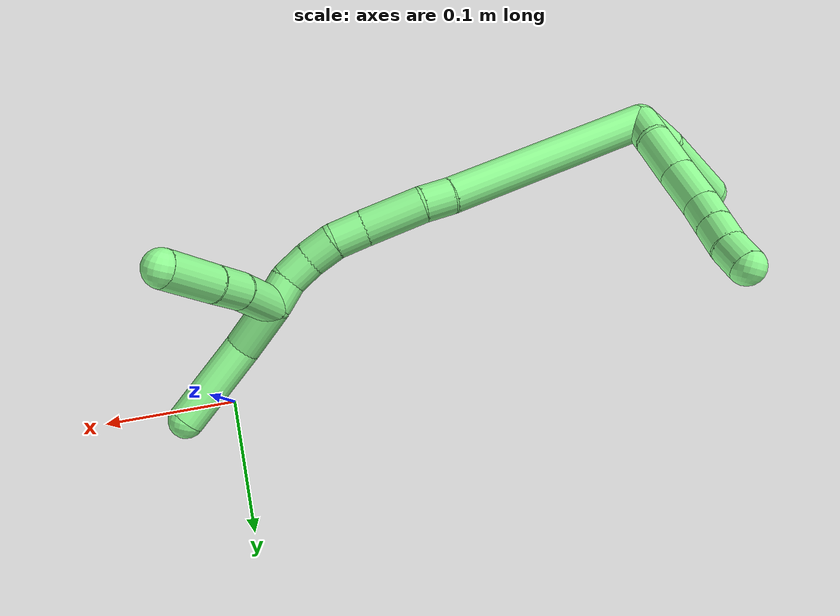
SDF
<sdf version="1.7">
 <world name="default">
  <model name="13">
   <static>0</static>
   <link name="13">
    <collision name="collision-cylinder-e_1_2_8">
     <pose>-0.002538 0.010507 -0.005899 -2.08235 -0.207585 0.35219</pose>
     <geometry><cylinder><radius>0.0125</radius><length>0.024629</length></cylinder></geometry>
     <surface>
      <friction><ode><mu>1.16</mu><mu2>1.16</mu2><slip1>0</slip1><slip2>0</slip2></ode></friction>
      <contact><ode><kp>1e+06</kp><kd>1</kd><max_vel>0</max_vel><min_depth>0.001</min_depth></ode></contact>
     </surface>
    </collision>
    <visual name="visual-cylinder-e_1_2_8">
     <pose>-0.002538 0.010507 -0.005899 -2.08235 -0.207585 0.35219</pose>
     <geometry><cylinder><radius>0.0125</radius><length>0.024629</length></cylinder></geometry>
     <material><ambient>0.564706 0.984314 0.572549 1</ambient></material>
    </visual>
    <collision name="collision-cylinder-e_2_8_9">
     <pose>-0.011611 0.033268 -0.021253 -2.22802 -0.39955 0.781607</pose>
     <geometry><cylinder><radius>0.0125</radius><length>0.033602</length></cylinder></geometry>
     <surface>
      <friction><ode><mu>1.16</mu><mu2>1.16</mu2><slip1>0</slip1><slip2>0</slip2></ode></friction>
      <contact><ode><kp>1e+06</kp><kd>1</kd><max_vel>0</max_vel><min_depth>0.001</min_depth></ode></contact>
     </surface>
    </collision>
    <visual name="visual-cylinder-e_2_8_9">
     <pose>-0.011611 0.033268 -0.021253 -2.22802 -0.39955 0.781607</pose>
     <geometry><cylinder><radius>0.0125</radius><length>0.033602</length></cylinder></geometry>
     <material><ambient>0.564706 0.984314 0.572549 1</ambient></material>
    </visual>
    <collision name="collision-cylinder-e_3_9_10">
     <pose>-0.02414 0.057239 -0.039283 -2.20251 -0.391471 0.745054</pose>
     <geometry><cylinder><radius>0.0125</radius><length>0.031415</length></cylinder></geometry>
     <surface>
      <friction><ode><mu>1.16</mu><mu2>1.16</mu2><slip1>0</slip1><slip2>0</slip2></ode></friction>
      <contact><ode><kp>1e+06</kp><kd>1</kd><max_vel>0</max_vel><min_depth>0.001</min_depth></ode></contact>
     </surface>
    </collision>
    <visual name="visual-cylinder-e_3_9_10">
     <pose>-0.02414 0.057239 -0.039283 -2.20251 -0.391471 0.745054</pose>
     <geometry><cylinder><radius>0.0125</radius><length>0.031415</length></cylinder></geometry>
     <material><ambient>0.564706 0.984314 0.572549 1</ambient></material>
    </visual>
    <collision name="collision-cylinder-e_4_10_11">
     <pose>-0.032617 0.077023 -0.053246 -2.15981 -0.250634 0.462906</pose>
     <geometry><cylinder><radius>0.0125</radius><length>0.02003</length></cylinder></geometry>
     <surface>
      <friction><ode><mu>1.16</mu><mu2>1.16</mu2><slip1>0</slip1><slip2>0</slip2></ode></friction>
      <contact><ode><kp>1e+06</kp><kd>1</kd><max_vel>0</max_vel><min_depth>0.001</min_depth></ode></contact>
     </surface>
    </collision>
    <visual name="visual-cylinder-e_4_10_11">
     <pose>-0.032617 0.077023 -0.053246 -2.15981 -0.250634 0.462906</pose>
     <geometry><cylinder><radius>0.0125</radius><length>0.02003</length></cylinder></geometry>
     <material><ambient>0.564706 0.984314 0.572549 1</ambient></material>
    </visual>
    <collision name="collision-cylinder-e_5_11_12">
     <pose>-0.037701 0.093206 -0.064075 -2.16124 -0.260077 0.480679</pose>
     <geometry><cylinder><radius>0.0125</radius><length>0.020219</length></cylinder></geometry>
     <surface>
      <friction><ode><mu>1.16</mu><mu2>1.16</mu2><slip1>0</slip1><slip2>0</slip2></ode></friction>
      <contact><ode><kp>1e+06</kp><kd>1</kd><max_vel>0</max_vel><min_depth>0.001</min_depth></ode></contact>
     </surface>
    </collision>
    <visual name="visual-cylinder-e_5_11_12">
     <pose>-0.037701 0.093206 -0.064075 -2.16124 -0.260077 0.480679</pose>
     <geometry><cylinder><radius>0.0125</radius><length>0.020219</length></cylinder></geometry>
     <material><ambient>0.564706 0.984314 0.572549 1</ambient></material>
    </visual>
    <collision name="collision-cylinder-e_6_12_6">
     <pose>-0.043853 0.109594 -0.073988 -2.06649 -0.361161 0.5944</pose>
     <geometry><cylinder><radius>0.0125</radius><length>0.020106</length></cylinder></geometry>
     <surface>
      <friction><ode><mu>1.16</mu><mu2>1.16</mu2><slip1>0</slip1><slip2>0</slip2></ode></friction>
      <contact><ode><kp>1e+06</kp><kd>1</kd><max_vel>0</max_vel><min_depth>0.001</min_depth></ode></contact>
     </surface>
    </collision>
    <visual name="visual-cylinder-e_6_12_6">
     <pose>-0.043853 0.109594 -0.073988 -2.06649 -0.361161 0.5944</pose>
     <geometry><cylinder><radius>0.0125</radius><length>0.020106</length></cylinder></geometry>
     <material><ambient>0.564706 0.984314 0.572549 1</ambient></material>
    </visual>
    <collision name="collision-cylinder-e_1_2_13">
     <pose>-0.014317 -0.003433 -0.005082 2.54742 -1.16609 -2.27241</pose>
     <geometry><cylinder><radius>0.0125</radius><length>0.03115</length></cylinder></geometry>
     <surface>
      <friction><ode><mu>1.16</mu><mu2>1.16</mu2><slip1>0</slip1><slip2>0</slip2></ode></friction>
      <contact><ode><kp>1e+06</kp><kd>1</kd><max_vel>0</max_vel><min_depth>0.001</min_depth></ode></contact>
     </surface>
    </collision>
    <visual name="visual-cylinder-e_1_2_13">
     <pose>-0.014317 -0.003433 -0.005082 2.54742 -1.16609 -2.27241</pose>
     <geometry><cylinder><radius>0.0125</radius><length>0.03115</length></cylinder></geometry>
     <material><ambient>0.564706 0.984314 0.572549 1</ambient></material>
    </visual>
    <collision name="collision-cylinder-e_2_13_5">
     <pose>-0.057936 -0.02134 -0.020978 2.21252 -1.01826 -1.67851</pose>
     <geometry><cylinder><radius>0.0125</radius><length>0.06885</length></cylinder></geometry>
     <surface>
      <friction><ode><mu>1.16</mu><mu2>1.16</mu2><slip1>0</slip1><slip2>0</slip2></ode></friction>
      <contact><ode><kp>1e+06</kp><kd>1</kd><max_vel>0</max_vel><min_depth>0.001</min_depth></ode></contact>
     </surface>
    </collision>
    <visual name="visual-cylinder-e_2_13_5">
     <pose>-0.057936 -0.02134 -0.020978 2.21252 -1.01826 -1.67851</pose>
     <geometry><cylinder><radius>0.0125</radius><length>0.06885</length></cylinder></geometry>
     <material><ambient>0.564706 0.984314 0.572549 1</ambient></material>
    </visual>
    <collision name="collision-cylinder-e_1_2_14">
     <pose>0.06339 0.014558 -0.042599 -2.81229 0.95328 -2.51895</pose>
     <geometry><cylinder><radius>0.0125</radius><length>0.155497</length></cylinder></geometry>
     <surface>
      <friction><ode><mu>1.16</mu><mu2>1.16</mu2><slip1>0</slip1><slip2>0</slip2></ode></friction>
      <contact><ode><kp>1e+06</kp><kd>1</kd><max_vel>0</max_vel><min_depth>0.001</min_depth></ode></contact>
     </surface>
    </collision>
    <visual name="visual-cylinder-e_1_2_14">
     <pose>0.06339 0.014558 -0.042599 -2.81229 0.95328 -2.51895</pose>
     <geometry><cylinder><radius>0.0125</radius><length>0.155497</length></cylinder></geometry>
     <material><ambient>0.564706 0.984314 0.572549 1</ambient></material>
    </visual>
    <collision name="collision-cylinder-e_2_14_15">
     <pose>0.135662 0.030018 -0.090426 -2.97061 1.03227 -2.84181</pose>
     <geometry><cylinder><radius>0.0125</radius><length>0.020694</length></cylinder></geometry>
     <surface>
      <friction><ode><mu>1.16</mu><mu2>1.16</mu2><slip1>0</slip1><slip2>0</slip2></ode></friction>
      <contact><ode><kp>1e+06</kp><kd>1</kd><max_vel>0</max_vel><min_depth>0.001</min_depth></ode></contact>
     </surface>
    </collision>
    <visual name="visual-cylinder-e_2_14_15">
     <pose>0.135662 0.030018 -0.090426 -2.97061 1.03227 -2.84181</pose>
     <geometry><cylinder><radius>0.0125</radius><length>0.020694</length></cylinder></geometry>
     <material><ambient>0.564706 0.984314 0.572549 1</ambient></material>
    </visual>
    <collision name="collision-cylinder-e_3_15_16">
     <pose>0.16122 0.029719 -0.108227 3.04625 0.922639 2.95024</pose>
     <geometry><cylinder><radius>0.0125</radius><length>0.041836</length></cylinder></geometry>
     <surface>
      <friction><ode><mu>1.16</mu><mu2>1.16</mu2><slip1>0</slip1><slip2>0</slip2></ode></friction>
      <contact><ode><kp>1e+06</kp><kd>1</kd><max_vel>0</max_vel><min_depth>0.001</min_depth></ode></contact>
     </surface>
    </collision>
    <visual name="visual-cylinder-e_3_15_16">
     <pose>0.16122 0.029719 -0.108227 3.04625 0.922639 2.95024</pose>
     <geometry><cylinder><radius>0.0125</radius><length>0.041836</length></cylinder></geometry>
     <material><ambient>0.564706 0.984314 0.572549 1</ambient></material>
    </visual>
    <collision name="collision-cylinder-e_4_16_17">
     <pose>0.186503 0.028388 -0.127439 3.12212 0.913504 3.10196</pose>
     <geometry><cylinder><radius>0.0125</radius><length>0.021743</length></cylinder></geometry>
     <surface>
      <friction><ode><mu>1.16</mu><mu2>1.16</mu2><slip1>0</slip1><slip2>0</slip2></ode></friction>
      <contact><ode><kp>1e+06</kp><kd>1</kd><max_vel>0</max_vel><min_depth>0.001</min_depth></ode></contact>
     </surface>
    </collision>
    <visual name="visual-cylinder-e_4_16_17">
     <pose>0.186503 0.028388 -0.127439 3.12212 0.913504 3.10196</pose>
     <geometry><cylinder><radius>0.0125</radius><length>0.021743</length></cylinder></geometry>
     <material><ambient>0.564706 0.984314 0.572549 1</ambient></material>
    </visual>
    <collision name="collision-cylinder-e_5_17_18">
     <pose>0.201241 0.026886 -0.141894 2.96775 0.65798 2.64178</pose>
     <geometry><cylinder><radius>0.0125</radius><length>0.020055</length></cylinder></geometry>
     <surface>
      <friction><ode><mu>1.16</mu><mu2>1.16</mu2><slip1>0</slip1><slip2>0</slip2></ode></friction>
      <contact><ode><kp>1e+06</kp><kd>1</kd><max_vel>0</max_vel><min_depth>0.001</min_depth></ode></contact>
     </surface>
    </collision>
    <visual name="visual-cylinder-e_5_17_18">
     <pose>0.201241 0.026886 -0.141894 2.96775 0.65798 2.64178</pose>
     <geometry><cylinder><radius>0.0125</radius><length>0.020055</length></cylinder></geometry>
     <material><ambient>0.564706 0.984314 0.572549 1</ambient></material>
    </visual>
    <collision name="collision-cylinder-e_6_18_19">
     <pose>0.212713 0.025318 -0.158201 3.11859 0.561266 3.06183</pose>
     <geometry><cylinder><radius>0.0125</radius><length>0.020066</length></cylinder></geometry>
     <surface>
      <friction><ode><mu>1.16</mu><mu2>1.16</mu2><slip1>0</slip1><slip2>0</slip2></ode></friction>
      <contact><ode><kp>1e+06</kp><kd>1</kd><max_vel>0</max_vel><min_depth>0.001</min_depth></ode></contact>
     </surface>
    </collision>
    <visual name="visual-cylinder-e_6_18_19">
     <pose>0.212713 0.025318 -0.158201 3.11859 0.561266 3.06183</pose>
     <geometry><cylinder><radius>0.0125</radius><length>0.020066</length></cylinder></geometry>
     <material><ambient>0.564706 0.984314 0.572549 1</ambient></material>
    </visual>
    <collision name="collision-cylinder-e_7_19_1">
     <pose>0.221048 0.026716 -0.176157 -2.97482 0.302397 -2.13813</pose>
     <geometry><cylinder><radius>0.0125</radius><length>0.020109</length></cylinder></geometry>
     <surface>
      <friction><ode><mu>1.16</mu><mu2>1.16</mu2><slip1>0</slip1><slip2>0</slip2></ode></friction>
      <contact><ode><kp>1e+06</kp><kd>1</kd><max_vel>0</max_vel><min_depth>0.001</min_depth></ode></contact>
     </surface>
    </collision>
    <visual name="visual-cylinder-e_7_19_1">
     <pose>0.221048 0.026716 -0.176157 -2.97482 0.302397 -2.13813</pose>
     <geometry><cylinder><radius>0.0125</radius><length>0.020109</length></cylinder></geometry>
     <material><ambient>0.564706 0.984314 0.572549 1</ambient></material>
    </visual>
    <collision name="collision-cylinder-e_1_1_20">
     <pose>0.236343 0.040668 -0.181446 -1.24496 0.756012 -0.55525</pose>
     <geometry><cylinder><radius>0.0125</radius><length>0.03586</length></cylinder></geometry>
     <surface>
      <friction><ode><mu>1.16</mu><mu2>1.16</mu2><slip1>0</slip1><slip2>0</slip2></ode></friction>
      <contact><ode><kp>1e+06</kp><kd>1</kd><max_vel>0</max_vel><min_depth>0.001</min_depth></ode></contact>
     </surface>
    </collision>
    <visual name="visual-cylinder-e_1_1_20">
     <pose>0.236343 0.040668 -0.181446 -1.24496 0.756012 -0.55525</pose>
     <geometry><cylinder><radius>0.0125</radius><length>0.03586</length></cylinder></geometry>
     <material><ambient>0.564706 0.984314 0.572549 1</ambient></material>
    </visual>
    <collision name="collision-cylinder-e_2_20_21">
     <pose>0.257507 0.061049 -0.175682 -1.37533 0.825703 -0.690762</pose>
     <geometry><cylinder><radius>0.0125</radius><length>0.02412</length></cylinder></geometry>
     <surface>
      <friction><ode><mu>1.16</mu><mu2>1.16</mu2><slip1>0</slip1><slip2>0</slip2></ode></friction>
      <contact><ode><kp>1e+06</kp><kd>1</kd><max_vel>0</max_vel><min_depth>0.001</min_depth></ode></contact>
     </surface>
    </collision>
    <visual name="visual-cylinder-e_2_20_21">
     <pose>0.257507 0.061049 -0.175682 -1.37533 0.825703 -0.690762</pose>
     <geometry><cylinder><radius>0.0125</radius><length>0.02412</length></cylinder></geometry>
     <material><ambient>0.564706 0.984314 0.572549 1</ambient></material>
    </visual>
    <collision name="collision-cylinder-e_3_21_4">
     <pose>0.282175 0.081035 -0.171354 -1.34568 0.910414 -0.743837</pose>
     <geometry><cylinder><radius>0.0125</radius><length>0.04002</length></cylinder></geometry>
     <surface>
      <friction><ode><mu>1.16</mu><mu2>1.16</mu2><slip1>0</slip1><slip2>0</slip2></ode></friction>
      <contact><ode><kp>1e+06</kp><kd>1</kd><max_vel>0</max_vel><min_depth>0.001</min_depth></ode></contact>
     </surface>
    </collision>
    <visual name="visual-cylinder-e_3_21_4">
     <pose>0.282175 0.081035 -0.171354 -1.34568 0.910414 -0.743837</pose>
     <geometry><cylinder><radius>0.0125</radius><length>0.04002</length></cylinder></geometry>
     <material><ambient>0.564706 0.984314 0.572549 1</ambient></material>
    </visual>
    <collision name="collision-cylinder-e_1_1_22">
     <pose>0.229932 0.023102 -0.202654 2.84486 0.319396 1.6455</pose>
     <geometry><cylinder><radius>0.0125</radius><length>0.037518</length></cylinder></geometry>
     <surface>
      <friction><ode><mu>1.16</mu><mu2>1.16</mu2><slip1>0</slip1><slip2>0</slip2></ode></friction>
      <contact><ode><kp>1e+06</kp><kd>1</kd><max_vel>0</max_vel><min_depth>0.001</min_depth></ode></contact>
     </surface>
    </collision>
    <visual name="visual-cylinder-e_1_1_22">
     <pose>0.229932 0.023102 -0.202654 2.84486 0.319396 1.6455</pose>
     <geometry><cylinder><radius>0.0125</radius><length>0.037518</length></cylinder></geometry>
     <material><ambient>0.564706 0.984314 0.572549 1</ambient></material>
    </visual>
    <collision name="collision-cylinder-e_2_22_3">
     <pose>0.24848 0.019632 -0.248195 -3.0807 0.417153 -2.85579</pose>
     <geometry><cylinder><radius>0.0125</radius><length>0.062482</length></cylinder></geometry>
     <surface>
      <friction><ode><mu>1.16</mu><mu2>1.16</mu2><slip1>0</slip1><slip2>0</slip2></ode></friction>
      <contact><ode><kp>1e+06</kp><kd>1</kd><max_vel>0</max_vel><min_depth>0.001</min_depth></ode></contact>
     </surface>
    </collision>
    <visual name="visual-cylinder-e_2_22_3">
     <pose>0.24848 0.019632 -0.248195 -3.0807 0.417153 -2.85579</pose>
     <geometry><cylinder><radius>0.0125</radius><length>0.062482</length></cylinder></geometry>
     <material><ambient>0.564706 0.984314 0.572549 1</ambient></material>
    </visual>
    <collision name="collision-sphere-3">
     <pose>0.261138 0.02137 -0.276704 0 -0 0</pose>
     <geometry><sphere><radius>0.0125</radius></sphere></geometry>
     <surface>
      <friction><ode><mu>1.16</mu><mu2>1.16</mu2><slip1>0</slip1><slip2>0</slip2></ode></friction>
      <contact><ode><kp>1e+06</kp><kd>1</kd><max_vel>0</max_vel><min_depth>0.001</min_depth></ode></contact>
     </surface>
    </collision>
    <visual name="visual-sphere-3">
     <pose>0.261138 0.02137 -0.276704 0 -0 0</pose>
     <geometry><sphere><radius>0.0125</radius></sphere></geometry>
     <material><ambient>0.564706 0.984314 0.572549 1</ambient></material>
    </visual>
    <collision name="collision-sphere-22">
     <pose>0.235823 0.017894 -0.219686 0 -0 0</pose>
     <geometry><sphere><radius>0.0125</radius></sphere></geometry>
     <surface>
      <friction><ode><mu>1.16</mu><mu2>1.16</mu2><slip1>0</slip1><slip2>0</slip2></ode></friction>
      <contact><ode><kp>1e+06</kp><kd>1</kd><max_vel>0</max_vel><min_depth>0.001</min_depth></ode></contact>
     </surface>
    </collision>
    <visual name="visual-sphere-22">
     <pose>0.235823 0.017894 -0.219686 0 -0 0</pose>
     <geometry><sphere><radius>0.0125</radius></sphere></geometry>
     <material><ambient>0.564706 0.984314 0.572549 1</ambient></material>
    </visual>
    <collision name="collision-sphere-4">
     <pose>0.297978 0.093 -0.168614 0 -0 0</pose>
     <geometry><sphere><radius>0.0125</radius></sphere></geometry>
     <surface>
      <friction><ode><mu>1.16</mu><mu2>1.16</mu2><slip1>0</slip1><slip2>0</slip2></ode></friction>
      <contact><ode><kp>1e+06</kp><kd>1</kd><max_vel>0</max_vel><min_depth>0.001</min_depth></ode></contact>
     </surface>
    </collision>
    <visual name="visual-sphere-4">
     <pose>0.297978 0.093 -0.168614 0 -0 0</pose>
     <geometry><sphere><radius>0.0125</radius></sphere></geometry>
     <material><ambient>0.564706 0.984314 0.572549 1</ambient></material>
    </visual>
    <collision name="collision-sphere-21">
     <pose>0.266372 0.06907 -0.174094 0 -0 0</pose>
     <geometry><sphere><radius>0.0125</radius></sphere></geometry>
     <surface>
      <friction><ode><mu>1.16</mu><mu2>1.16</mu2><slip1>0</slip1><slip2>0</slip2></ode></friction>
      <contact><ode><kp>1e+06</kp><kd>1</kd><max_vel>0</max_vel><min_depth>0.001</min_depth></ode></contact>
     </surface>
    </collision>
    <visual name="visual-sphere-21">
     <pose>0.266372 0.06907 -0.174094 0 -0 0</pose>
     <geometry><sphere><radius>0.0125</radius></sphere></geometry>
     <material><ambient>0.564706 0.984314 0.572549 1</ambient></material>
    </visual>
    <collision name="collision-sphere-20">
     <pose>0.248643 0.053027 -0.17727 0 -0 0</pose>
     <geometry><sphere><radius>0.0125</radius></sphere></geometry>
     <surface>
      <friction><ode><mu>1.16</mu><mu2>1.16</mu2><slip1>0</slip1><slip2>0</slip2></ode></friction>
      <contact><ode><kp>1e+06</kp><kd>1</kd><max_vel>0</max_vel><min_depth>0.001</min_depth></ode></contact>
     </surface>
    </collision>
    <visual name="visual-sphere-20">
     <pose>0.248643 0.053027 -0.17727 0 -0 0</pose>
     <geometry><sphere><radius>0.0125</radius></sphere></geometry>
     <material><ambient>0.564706 0.984314 0.572549 1</ambient></material>
    </visual>
    <collision name="collision-sphere-12">
     <pose>-0.040301 0.101321 -0.069515 0 -0 0</pose>
     <geometry><sphere><radius>0.0125</radius></sphere></geometry>
     <surface>
      <friction><ode><mu>1.16</mu><mu2>1.16</mu2><slip1>0</slip1><slip2>0</slip2></ode></friction>
      <contact><ode><kp>1e+06</kp><kd>1</kd><max_vel>0</max_vel><min_depth>0.001</min_depth></ode></contact>
     </surface>
    </collision>
    <visual name="visual-sphere-12">
     <pose>-0.040301 0.101321 -0.069515 0 -0 0</pose>
     <geometry><sphere><radius>0.0125</radius></sphere></geometry>
     <material><ambient>0.564706 0.984314 0.572549 1</ambient></material>
    </visual>
    <collision name="collision-sphere-11">
     <pose>-0.035101 0.08509 -0.058636 0 -0 0</pose>
     <geometry><sphere><radius>0.0125</radius></sphere></geometry>
     <surface>
      <friction><ode><mu>1.16</mu><mu2>1.16</mu2><slip1>0</slip1><slip2>0</slip2></ode></friction>
      <contact><ode><kp>1e+06</kp><kd>1</kd><max_vel>0</max_vel><min_depth>0.001</min_depth></ode></contact>
     </surface>
    </collision>
    <visual name="visual-sphere-11">
     <pose>-0.035101 0.08509 -0.058636 0 -0 0</pose>
     <geometry><sphere><radius>0.0125</radius></sphere></geometry>
     <material><ambient>0.564706 0.984314 0.572549 1</ambient></material>
    </visual>
    <collision name="collision-sphere-10">
     <pose>-0.030133 0.068956 -0.047857 0 -0 0</pose>
     <geometry><sphere><radius>0.0125</radius></sphere></geometry>
     <surface>
      <friction><ode><mu>1.16</mu><mu2>1.16</mu2><slip1>0</slip1><slip2>0</slip2></ode></friction>
      <contact><ode><kp>1e+06</kp><kd>1</kd><max_vel>0</max_vel><min_depth>0.001</min_depth></ode></contact>
     </surface>
    </collision>
    <visual name="visual-sphere-10">
     <pose>-0.030133 0.068956 -0.047857 0 -0 0</pose>
     <geometry><sphere><radius>0.0125</radius></sphere></geometry>
     <material><ambient>0.564706 0.984314 0.572549 1</ambient></material>
    </visual>
    <collision name="collision-sphere-9">
     <pose>-0.018147 0.045522 -0.030709 0 -0 0</pose>
     <geometry><sphere><radius>0.0125</radius></sphere></geometry>
     <surface>
      <friction><ode><mu>1.16</mu><mu2>1.16</mu2><slip1>0</slip1><slip2>0</slip2></ode></friction>
      <contact><ode><kp>1e+06</kp><kd>1</kd><max_vel>0</max_vel><min_depth>0.001</min_depth></ode></contact>
     </surface>
    </collision>
    <visual name="visual-sphere-9">
     <pose>-0.018147 0.045522 -0.030709 0 -0 0</pose>
     <geometry><sphere><radius>0.0125</radius></sphere></geometry>
     <material><ambient>0.564706 0.984314 0.572549 1</ambient></material>
    </visual>
    <collision name="collision-sphere-2">
     <geometry><sphere><radius>0.0125</radius></sphere></geometry>
     <surface>
      <friction><ode><mu>1.16</mu><mu2>1.16</mu2><slip1>0</slip1><slip2>0</slip2></ode></friction>
      <contact><ode><kp>1e+06</kp><kd>1</kd><max_vel>0</max_vel><min_depth>0.001</min_depth></ode></contact>
     </surface>
    </collision>
    <visual name="visual-sphere-2">
     <geometry><sphere><radius>0.0125</radius></sphere></geometry>
     <material><ambient>0.564706 0.984314 0.572549 1</ambient></material>
    </visual>
    <collision name="collision-sphere-19">
     <pose>0.218054 0.025123 -0.166692 0 -0 0</pose>
     <geometry><sphere><radius>0.0125</radius></sphere></geometry>
     <surface>
      <friction><ode><mu>1.16</mu><mu2>1.16</mu2><slip1>0</slip1><slip2>0</slip2></ode></friction>
      <contact><ode><kp>1e+06</kp><kd>1</kd><max_vel>0</max_vel><min_depth>0.001</min_depth></ode></contact>
     </surface>
    </collision>
    <visual name="visual-sphere-19">
     <pose>0.218054 0.025123 -0.166692 0 -0 0</pose>
     <geometry><sphere><radius>0.0125</radius></sphere></geometry>
     <material><ambient>0.564706 0.984314 0.572549 1</ambient></material>
    </visual>
    <collision name="collision-sphere-8">
     <pose>-0.005076 0.021015 -0.011798 0 -0 0</pose>
     <geometry><sphere><radius>0.0125</radius></sphere></geometry>
     <surface>
      <friction><ode><mu>1.16</mu><mu2>1.16</mu2><slip1>0</slip1><slip2>0</slip2></ode></friction>
      <contact><ode><kp>1e+06</kp><kd>1</kd><max_vel>0</max_vel><min_depth>0.001</min_depth></ode></contact>
     </surface>
    </collision>
    <visual name="visual-sphere-8">
     <pose>-0.005076 0.021015 -0.011798 0 -0 0</pose>
     <geometry><sphere><radius>0.0125</radius></sphere></geometry>
     <material><ambient>0.564706 0.984314 0.572549 1</ambient></material>
    </visual>
    <collision name="collision-sphere-6">
     <pose>-0.047405 0.117866 -0.078461 0 -0 0</pose>
     <geometry><sphere><radius>0.0125</radius></sphere></geometry>
     <surface>
      <friction><ode><mu>1.16</mu><mu2>1.16</mu2><slip1>0</slip1><slip2>0</slip2></ode></friction>
      <contact><ode><kp>1e+06</kp><kd>1</kd><max_vel>0</max_vel><min_depth>0.001</min_depth></ode></contact>
     </surface>
    </collision>
    <visual name="visual-sphere-6">
     <pose>-0.047405 0.117866 -0.078461 0 -0 0</pose>
     <geometry><sphere><radius>0.0125</radius></sphere></geometry>
     <material><ambient>0.564706 0.984314 0.572549 1</ambient></material>
    </visual>
    <collision name="collision-sphere-13">
     <pose>-0.028634 -0.006866 -0.010163 0 -0 0</pose>
     <geometry><sphere><radius>0.0125</radius></sphere></geometry>
     <surface>
      <friction><ode><mu>1.16</mu><mu2>1.16</mu2><slip1>0</slip1><slip2>0</slip2></ode></friction>
      <contact><ode><kp>1e+06</kp><kd>1</kd><max_vel>0</max_vel><min_depth>0.001</min_depth></ode></contact>
     </surface>
    </collision>
    <visual name="visual-sphere-13">
     <pose>-0.028634 -0.006866 -0.010163 0 -0 0</pose>
     <geometry><sphere><radius>0.0125</radius></sphere></geometry>
     <material><ambient>0.564706 0.984314 0.572549 1</ambient></material>
    </visual>
    <collision name="collision-sphere-5">
     <pose>-0.087239 -0.035813 -0.031793 0 -0 0</pose>
     <geometry><sphere><radius>0.0125</radius></sphere></geometry>
     <surface>
      <friction><ode><mu>1.16</mu><mu2>1.16</mu2><slip1>0</slip1><slip2>0</slip2></ode></friction>
      <contact><ode><kp>1e+06</kp><kd>1</kd><max_vel>0</max_vel><min_depth>0.001</min_depth></ode></contact>
     </surface>
    </collision>
    <visual name="visual-sphere-5">
     <pose>-0.087239 -0.035813 -0.031793 0 -0 0</pose>
     <geometry><sphere><radius>0.0125</radius></sphere></geometry>
     <material><ambient>0.564706 0.984314 0.572549 1</ambient></material>
    </visual>
    <collision name="collision-sphere-14">
     <pose>0.12678 0.029115 -0.085197 0 -0 0</pose>
     <geometry><sphere><radius>0.0125</radius></sphere></geometry>
     <surface>
      <friction><ode><mu>1.16</mu><mu2>1.16</mu2><slip1>0</slip1><slip2>0</slip2></ode></friction>
      <contact><ode><kp>1e+06</kp><kd>1</kd><max_vel>0</max_vel><min_depth>0.001</min_depth></ode></contact>
     </surface>
    </collision>
    <visual name="visual-sphere-14">
     <pose>0.12678 0.029115 -0.085197 0 -0 0</pose>
     <geometry><sphere><radius>0.0125</radius></sphere></geometry>
     <material><ambient>0.564706 0.984314 0.572549 1</ambient></material>
    </visual>
    <collision name="collision-sphere-15">
     <pose>0.144545 0.030921 -0.095655 0 -0 0</pose>
     <geometry><sphere><radius>0.0125</radius></sphere></geometry>
     <surface>
      <friction><ode><mu>1.16</mu><mu2>1.16</mu2><slip1>0</slip1><slip2>0</slip2></ode></friction>
      <contact><ode><kp>1e+06</kp><kd>1</kd><max_vel>0</max_vel><min_depth>0.001</min_depth></ode></contact>
     </surface>
    </collision>
    <visual name="visual-sphere-15">
     <pose>0.144545 0.030921 -0.095655 0 -0 0</pose>
     <geometry><sphere><radius>0.0125</radius></sphere></geometry>
     <material><ambient>0.564706 0.984314 0.572549 1</ambient></material>
    </visual>
    <collision name="collision-sphere-16">
     <pose>0.177896 0.028517 -0.120798 0 -0 0</pose>
     <geometry><sphere><radius>0.0125</radius></sphere></geometry>
     <surface>
      <friction><ode><mu>1.16</mu><mu2>1.16</mu2><slip1>0</slip1><slip2>0</slip2></ode></friction>
      <contact><ode><kp>1e+06</kp><kd>1</kd><max_vel>0</max_vel><min_depth>0.001</min_depth></ode></contact>
     </surface>
    </collision>
    <visual name="visual-sphere-16">
     <pose>0.177896 0.028517 -0.120798 0 -0 0</pose>
     <geometry><sphere><radius>0.0125</radius></sphere></geometry>
     <material><ambient>0.564706 0.984314 0.572549 1</ambient></material>
    </visual>
    <collision name="collision-sphere-17">
     <pose>0.195109 0.028258 -0.13408 0 -0 0</pose>
     <geometry><sphere><radius>0.0125</radius></sphere></geometry>
     <surface>
      <friction><ode><mu>1.16</mu><mu2>1.16</mu2><slip1>0</slip1><slip2>0</slip2></ode></friction>
      <contact><ode><kp>1e+06</kp><kd>1</kd><max_vel>0</max_vel><min_depth>0.001</min_depth></ode></contact>
     </surface>
    </collision>
    <visual name="visual-sphere-17">
     <pose>0.195109 0.028258 -0.13408 0 -0 0</pose>
     <geometry><sphere><radius>0.0125</radius></sphere></geometry>
     <material><ambient>0.564706 0.984314 0.572549 1</ambient></material>
    </visual>
    <collision name="collision-sphere-18">
     <pose>0.207373 0.025513 -0.149709 0 -0 0</pose>
     <geometry><sphere><radius>0.0125</radius></sphere></geometry>
     <surface>
      <friction><ode><mu>1.16</mu><mu2>1.16</mu2><slip1>0</slip1><slip2>0</slip2></ode></friction>
      <contact><ode><kp>1e+06</kp><kd>1</kd><max_vel>0</max_vel><min_depth>0.001</min_depth></ode></contact>
     </surface>
    </collision>
    <visual name="visual-sphere-18">
     <pose>0.207373 0.025513 -0.149709 0 -0 0</pose>
     <geometry><sphere><radius>0.0125</radius></sphere></geometry>
     <material><ambient>0.564706 0.984314 0.572549 1</ambient></material>
    </visual>
    <collision name="collision-sphere-1">
     <pose>0.224042 0.028309 -0.185622 0 -0 0</pose>
     <geometry><sphere><radius>0.0125</radius></sphere></geometry>
     <surface>
      <friction><ode><mu>1.16</mu><mu2>1.16</mu2><slip1>0</slip1><slip2>0</slip2></ode></friction>
      <contact><ode><kp>1e+06</kp><kd>1</kd><max_vel>0</max_vel><min_depth>0.001</min_depth></ode></contact>
     </surface>
    </collision>
    <visual name="visual-sphere-1">
     <pose>0.224042 0.028309 -0.185622 0 -0 0</pose>
     <geometry><sphere><radius>0.0125</radius></sphere></geometry>
     <material><ambient>0.564706 0.984314 0.572549 1</ambient></material>
    </visual>
    <inertial>
     <pose>0.104535 0.029102 -0.098153 0 -0 0</pose>
     <mass>0.75</mass>
     <inertia>
      <ixx>-0.000271</ixx>
      <ixy>0</ixy>
      <ixz>0</ixz>
      <iyy>0.000253</iyy>
      <iyz>0</iyz>
      <izz>-0.000355</izz>
     </inertia>
    </inertial>
   </link>
   <pose>-0.327534 -0.142525 0.077322 1.29518 -0.251691 -0.373921</pose>
  </model>
 </world>
</sdf>
